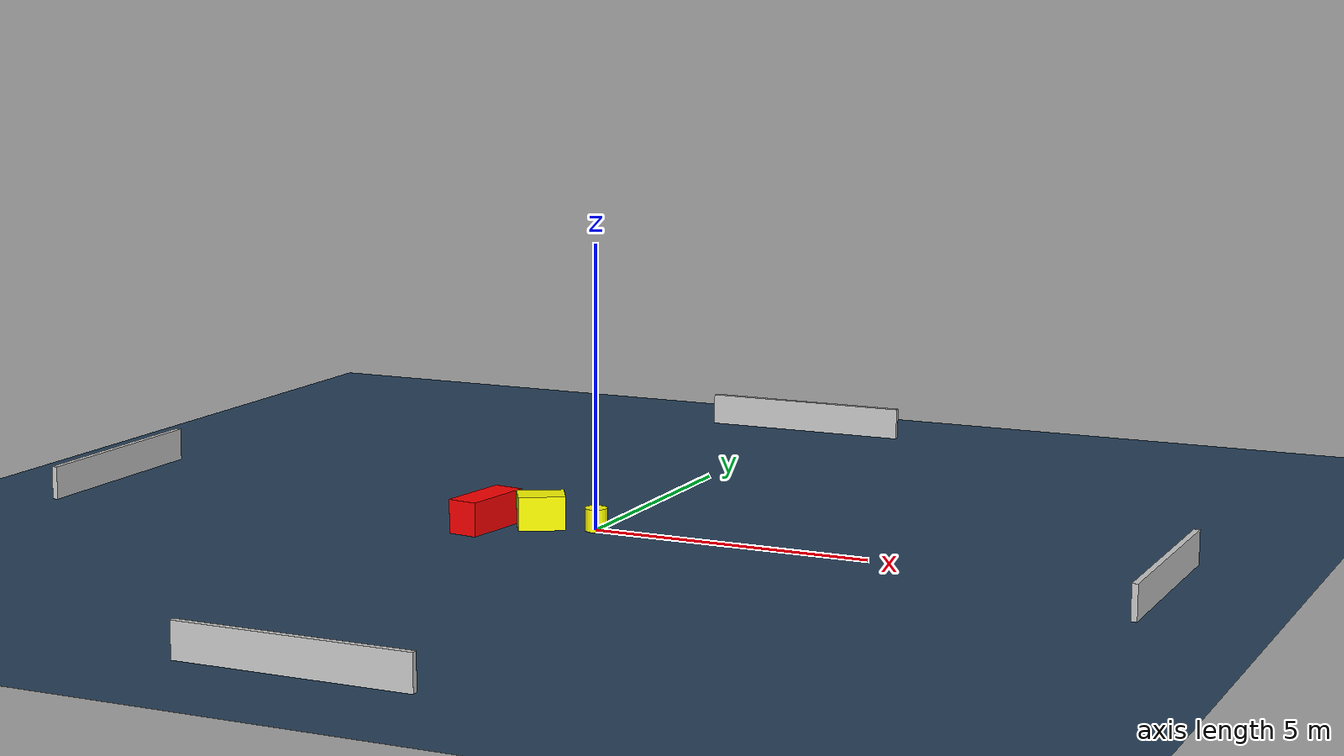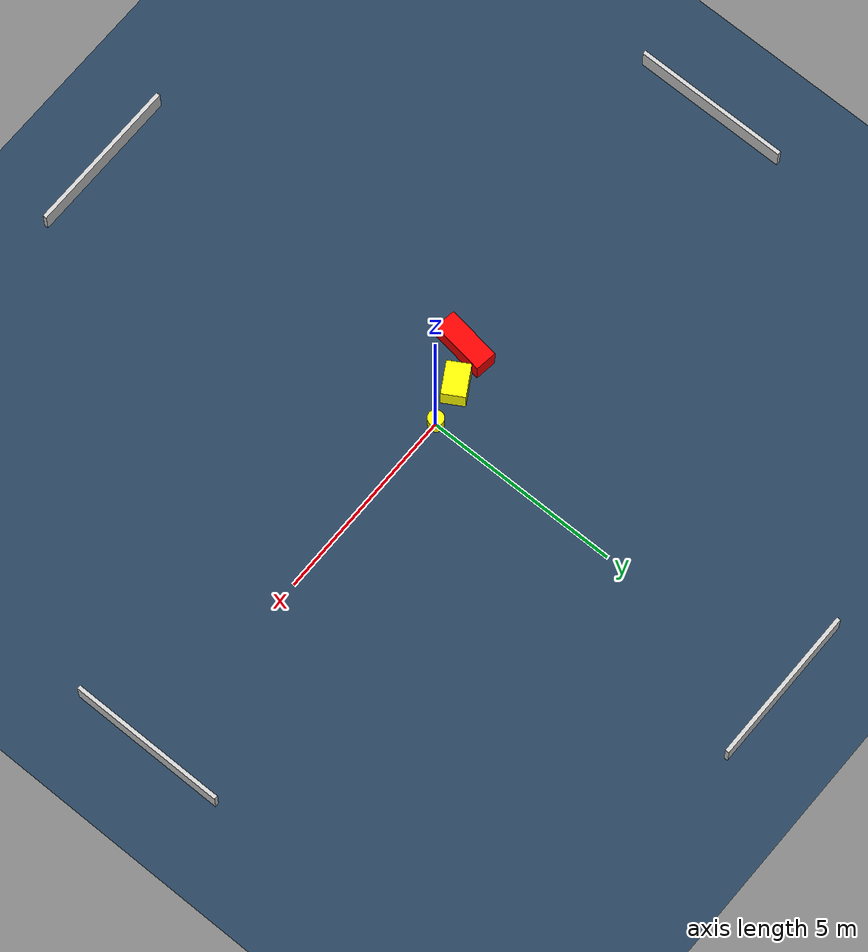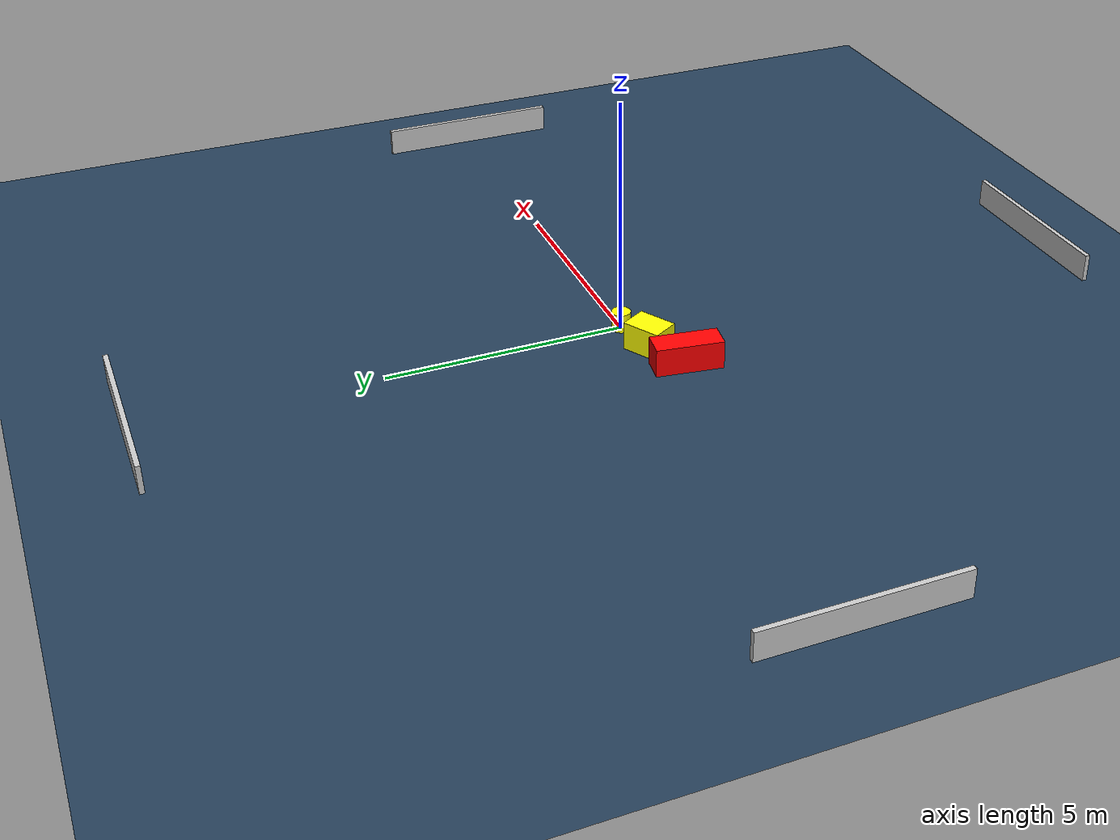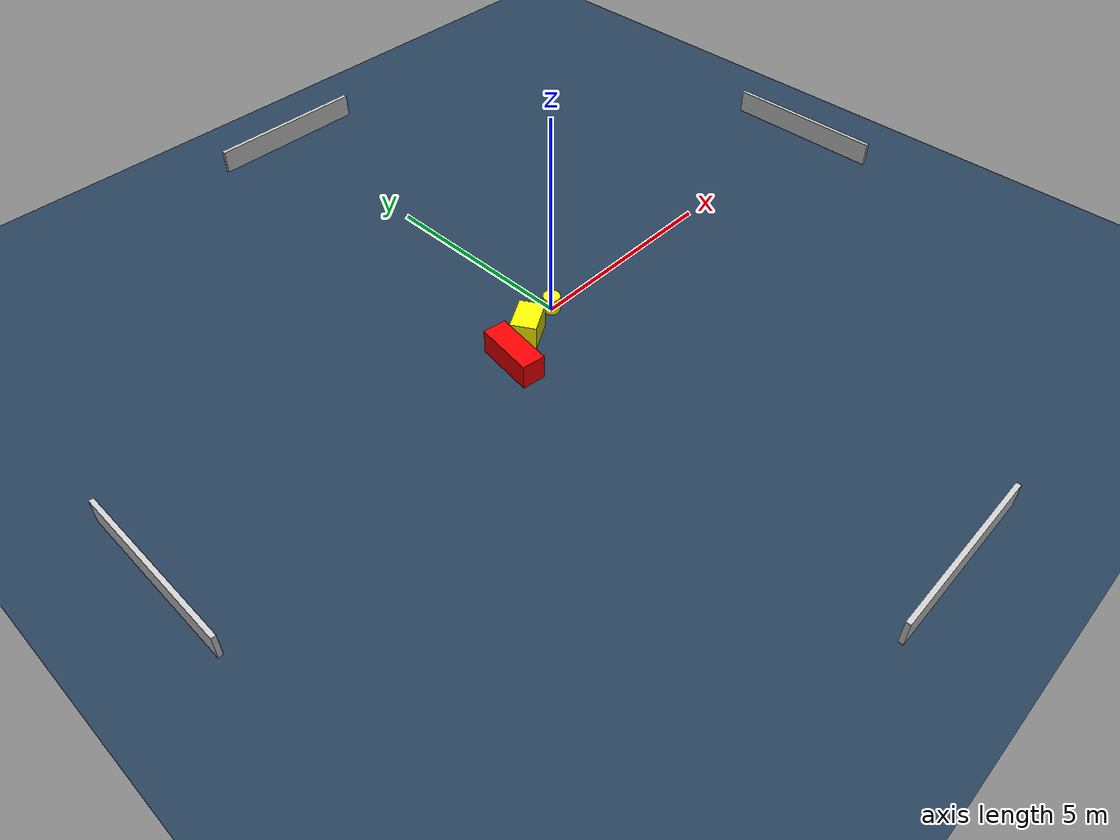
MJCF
<?xml version="1.0" ?>
<mujoco model="generated_environment">
  <option timestep="0.01" integrator="RK4" cone="elliptic"/>
  <default>
    <geom density="1"/>
  </default>
  <asset>
    <texture builtin="gradient" height="3072" name="skybox" rgb1="0.3 0.5 0.7" rgb2="0 0 0" type="skybox" width="512"/>
    <texture builtin="checker" height="300" name="groundplane" rgb1="0.2 0.3 0.4" rgb2="0.1 0.2 0.3" type="2d" width="300"/>
    <material name="groundplane" reflectance="0.2" texrepeat="5 5" texture="groundplane"/>
  </asset>
  <worldbody>
    <light dir="0 0 -1" directional="true" pos="0 0 1.5"/>
    <geom condim="3" friction="0.5 0.005 0.001" material="groundplane" name="floor" pos="0 0 0" size="0 0 0.05" type="plane"/>
    <body name="walls">
      <geom name="wall_1" condim="4" pos="-10.0 0.0 0.3" rgba="0.800000011920929 0.800000011920929 0.800000011920929 1.0" size="0.05 2.0 0.3" type="box"/>
      <geom name="wall_2" condim="4" pos="10.0 0.0 0.3" rgba="0.800000011920929 0.800000011920929 0.800000011920929 1.0" size="0.05 2.0 0.3" type="box"/>
      <geom name="wall_3" condim="4" pos="0.0 -10.0 0.3" rgba="0.800000011920929 0.800000011920929 0.800000011920929 1.0" size="2.0 0.05 0.3" type="box"/>
      <geom name="wall_4" condim="4" pos="0.0 10.0 0.3" rgba="0.800000011920929 0.800000011920929 0.800000011920929 1.0" size="2.0 0.05 0.3" type="box"/>
    </body>
    <body name="robot">
      <joint name="joint_x" type="slide" pos="0 0 0" axis="1 0 0"/>
      <joint name="joint_y" type="slide" pos="0 0 0" axis="0 1 0"/>
      <geom name="robot" type="cylinder" pos="0.0 0.0 0.2" size="0.2 0.2 0.0" mass="5.0" friction="1.0 0.005 0.0001" condim="4" rgba="1.0 1.0 0.0 1.0"/>
    </body>
    <body name="obstacle_1_movable">
      <geom name="obstacle_1_movable" condim="4" pos="-0.965009546609851 -0.20430325305519592 0.3" euler="0 0 120.17963623139023" friction="0.0 0.005 0.001" rgba="1.0 1.0 0.0 1.0" size="0.29567512012877656 0.4140324544246822 0.3" type="box" mass="0.1"/>
      <joint type="free"/>
    </body>
    <body name="obstacle_2_static">
      <geom name="obstacle_2_static" condim="4" pos="-1.8229625973130428 -0.6403692495717468 0.3" euler="0 0 351.8899764473224" friction="0.0 0.005 0.001" rgba="1.0 0.0 0.0 1.0" size="0.274097173076561 0.6985455906486056 0.3" type="box"/>
    </body>
  </worldbody>
  <actuator>
    <motor name="actuator_x" joint="joint_x" gear="1" ctrlrange="-1 1"/>
    <motor name="actuator_y" joint="joint_y" gear="1" ctrlrange="-1 1"/>
  </actuator>
</mujoco>
